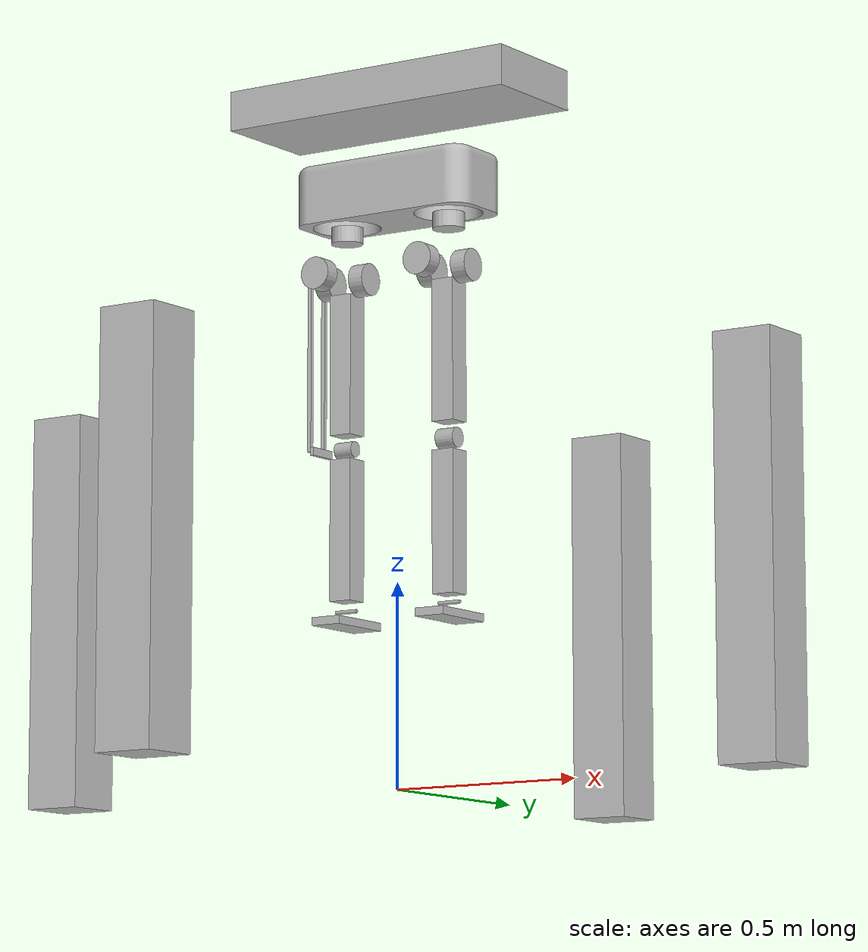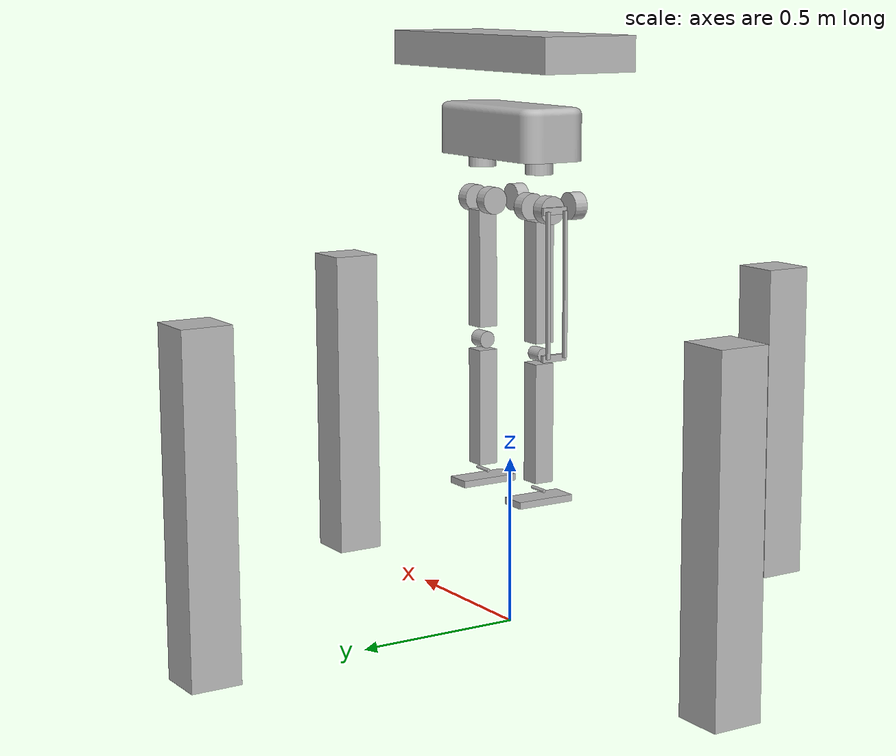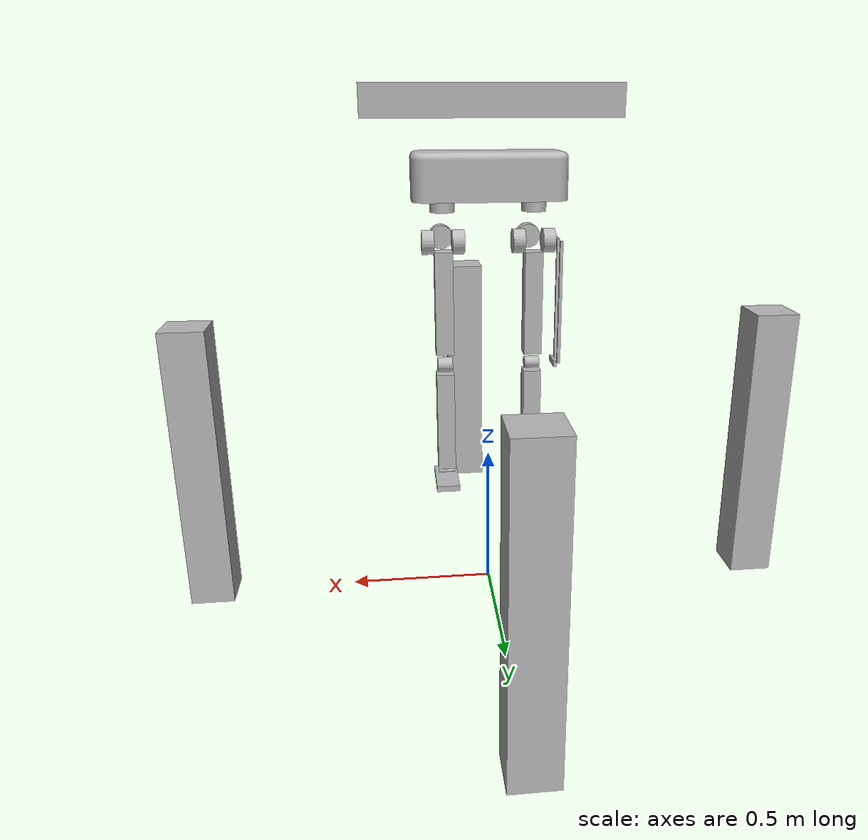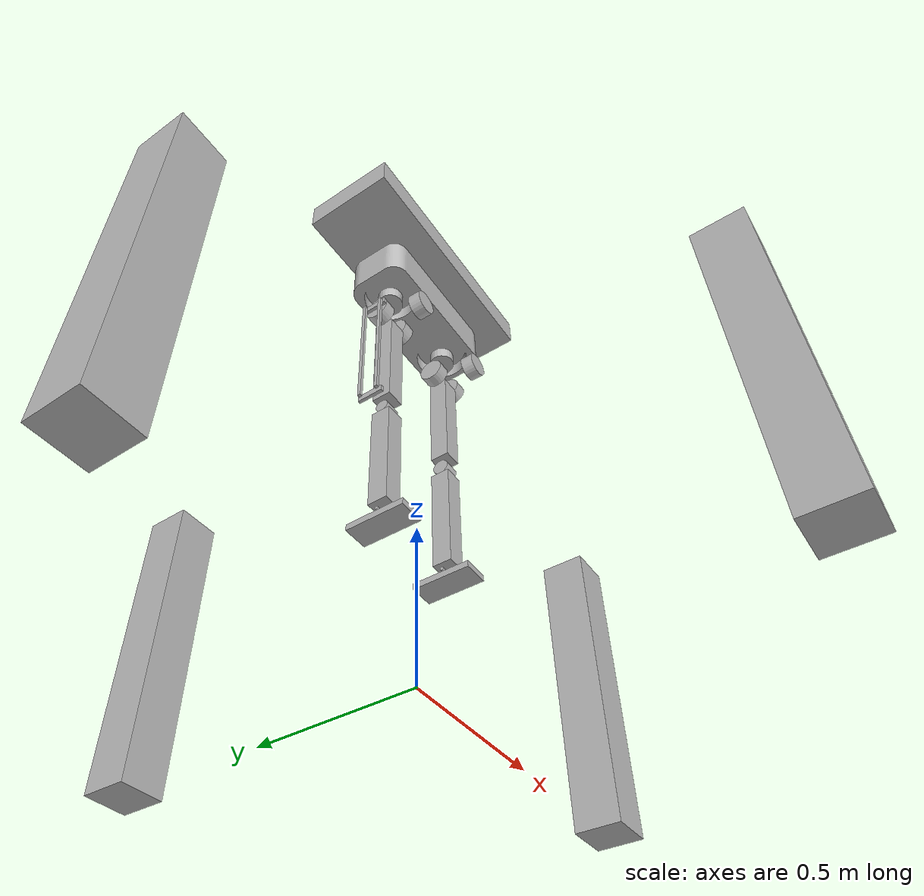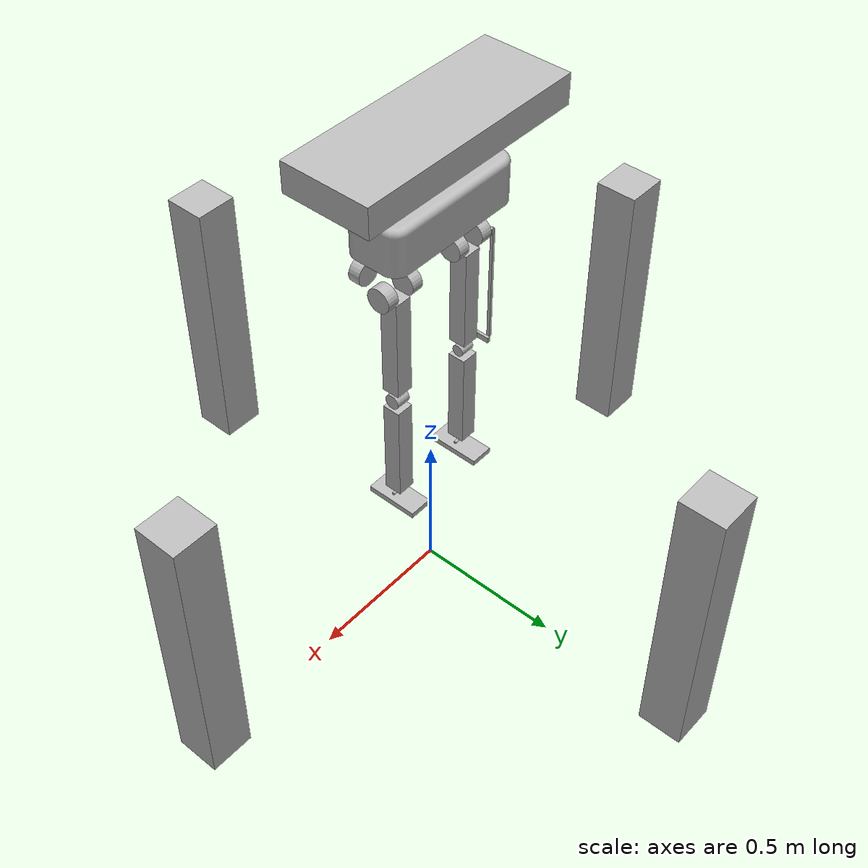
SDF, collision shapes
<?xml version="1.0" ?>
<sdf version="1.5">

<model name="simplified_biped">
    <link name="hanging_thing">
        <self_collide> 1 </self_collide>

        <pose> 0 0 1.7 0 0 0 </pose>

        <inertial>
            <mass>100</mass>

            <inertia>
                <ixx>0.3</ixx>
                <iyy>166</iyy>
                <izz>175</izz>
                <ixy>0</ixy>
                <ixz>0</ixz>
                <iyz>0</iyz>
            </inertia>
        </inertial>

        <collision name="torso_connection_collision">
            <geometry>
                <box>
                    <size> 0.80 0.3 0.1 </size>
                </box>
            </geometry>
        </collision>

        <visual name="torso_connection_visual">
            <geometry>
                <box>
                    <size> 0.80 0.3 0.1 </size>
                </box>
            </geometry>
        </visual>
    </link>

    <link name="rod_1">
        <self_collide> 1 </self_collide>

        <pose> 1 0 0.5 1.57 0 0 </pose>

        <inertial>
            <mass>100</mass>

            <inertia>
                <ixx>0.3</ixx>
                <iyy>166</iyy>
                <izz>175</izz>
                <ixy>0</ixy>
                <ixz>0</ixz>
                <iyz>0</iyz>
            </inertia>
        </inertial>

        <collision name="rod_1_collision">
            <geometry>
                <box>
                    <size> 0.15 1 0.15 </size>
                </box>
            </geometry>
        </collision>

        <visual name="rod_1_visual">
            <geometry>
                <box>
                    <size> 0.15 1 0.15 </size>
                </box>
            </geometry>
        </visual>
    </link>

    <link name="rod_2">
        <self_collide> 1 </self_collide>

        <pose> -1 0 0.5 1.57 0 0 </pose>

        <inertial>
            <mass>100</mass>

            <inertia>
                <ixx>0.3</ixx>
                <iyy>166</iyy>
                <izz>175</izz>
                <ixy>0</ixy>
                <ixz>0</ixz>
                <iyz>0</iyz>
            </inertia>
        </inertial>

        <collision name="rod_2_collision">
            <geometry>
                <box>
                    <size> 0.15 1 0.15 </size>
                </box>
            </geometry>
        </collision>

        <visual name="rod_2_visual">
            <geometry>
                <box>
                    <size> 0.15 1 0.15 </size>
                </box>
            </geometry>
        </visual>
    </link>

    <link name="rod_3">
        <self_collide> 1 </self_collide>

        <pose> 0 1 0.5 1.57 0 0 </pose>

        <inertial>
            <mass>100</mass>

            <inertia>
                <ixx>0.3</ixx>
                <iyy>166</iyy>
                <izz>175</izz>
                <ixy>0</ixy>
                <ixz>0</ixz>
                <iyz>0</iyz>
            </inertia>
        </inertial>

        <collision name="rod_3_collision">
            <geometry>
                <box>
                    <size> 0.15 1 0.15 </size>
                </box>
            </geometry>
        </collision>

        <visual name="rod_3_visual">
            <geometry>
                <box>
                    <size> 0.15 1 0.15 </size>
                </box>
            </geometry>
        </visual>
    </link>

    <link name="rod_4">
        <self_collide> 1 </self_collide>

        <pose> 0 -1 0.5 1.57 0 0 </pose>

        <inertial>
            <mass>100</mass>

            <inertia>
                <ixx>0.3</ixx>
                <iyy>166</iyy>
                <izz>175</izz>
                <ixy>0</ixy>
                <ixz>0</ixz>
                <iyz>0</iyz>
            </inertia>
        </inertial>

        <collision name="rod_4_collision">
            <geometry>
                <box>
                    <size> 0.15 1 0.15 </size>
                </box>
            </geometry>
        </collision>

        <visual name="rod_4_visual">
            <geometry>
                <box>
                    <size> 0.15 1 0.15 </size>
                </box>
            </geometry>
        </visual>
    </link>

    <joint name="temp_joint_1" type="fixed">
        <parent>hanging_thing</parent>
        <child>torso_connection</child>
    </joint>

    <joint name="temp_joint_2" type="fixed">
        <parent>rod_1</parent>
        <child>hanging_thing</child>
    </joint>

    <joint name="temp_joint_3" type="fixed">
        <parent>rod_2</parent>
        <child>hanging_thing</child>
    </joint>

    <joint name="temp_joint_4" type="fixed">
        <parent>rod_3</parent>
        <child>hanging_thing</child>
    </joint>

    <joint name="temp_joint_5" type="fixed">
        <parent>rod_4</parent>
        <child>hanging_thing</child>
    </joint>

    <link name="torso_connection">
        <self_collide> 1 </self_collide>

        <pose> 0 0 1.48 0 0 0 </pose>

        <inertial>
            <mass>10</mass>

            <inertia>
                <ixx>0.05121</ixx>
                <iyy>0.2096</iyy>
                <izz>0.2281</izz>
            </inertia>
        </inertial>

        <collision name="torso_connection_collision">
            <geometry>
                <mesh>
	   		 		<uri>model://simplified_biped/meshes/torso_connection.stl</uri>
				</mesh>
            </geometry>
        </collision>

        <visual name="torso_connection_visual">
            <geometry>
                <mesh>
					<uri>model://simplified_biped/meshes/torso_connection.stl</uri>
				</mesh>
            </geometry>
        </visual>
    </link>

    <!--Left leg-->
    <link name="left_lower_leg">

        <self_collide>1</self_collide>

        <pose> -0.15 0 0.64 0 0 0 </pose>

            <inertial>
                <mass>0.83</mass>
            <inertia>
                <ixx>0.015</ixx>
                <iyy>0.014</iyy>
                <izz>0.001</izz>
                <ixy>0</ixy>
                <ixz>0</ixz>
                <iyz>0</iyz>
                </inertia>
            </inertial>

            <collision name="left_lower_leg_collision">
                <geometry>
                    <box>
                        <size>0.06 0.06 0.35</size>
                    </box>
                </geometry>
            </collision>

            <visual name="left_lower_leg_visual">
                <geometry>
                    <box>
                        <size>0.06 0.06 0.4</size>
                    </box>
                </geometry>
            </visual>
    </link>

    <link name="left_knee">

        <self_collide>1</self_collide>
        <pose> -0.15 0 0.84 0 1.570796 0</pose>

        <inertial>
            <mass>0.1</mass>
            <inertia>
                <ixx>3.794e-05</ixx>
                <iyy>3.252e-05</iyy>
                <izz>3.794e-05</izz>
                <ixy>0</ixy>
                <ixz>0</ixz>
                <iyz>0</iyz>
            </inertia>
        </inertial>

        <collision name="left_knee_collision">
            <geometry>
                <cylinder>
                    <radius>0.02</radius>
                    <length>0.05</length>
                </cylinder>
            </geometry>
        </collision>

        <visual name="left_knee_visual">
            <pose> 0 0 0 0 0 0</pose>
            <geometry>
                <cylinder>
                    <radius>0.02</radius>
                    <length>0.05</length>
                </cylinder>
            </geometry>
        </visual>
    </link>

    <link name="left_upper_leg">

        <self_collide>1</self_collide>

        <pose> -0.15 0 1.05 0 0 0 </pose>

        <inertial>
            <mass>2.1</mass>
            <inertia>
                <ixx>0.052</ixx>
                <iyy>0.05</iyy>
                <izz>0.007</izz>
                <ixy>0</ixy>
                <ixz>0</ixz>
                <iyz>0</iyz>
            </inertia>
        </inertial>

        <collision name="left_upper_leg_collision">
            <geometry>
                    <box>
                        <size>0.06 0.06 0.35</size>
                    </box>
                </geometry>
        </collision>

        <visual name="left_upper_leg_visual">
            <geometry>
                <mesh>
					<uri>model://simplified_biped/meshes/upper_leg_350mm.stl</uri>
				</mesh>
            </geometry>
        </visual>
    </link>

    <link name="left_foot_base">

        <self_collide>1</self_collide>
        <pose> -0.15 0 0.41 0 0 0</pose>

        <inertial>
            <mass>0.1</mass>
            <inertia>
                <ixx>2.733e-04</ixx>
                <iyy>5.666e-05</iyy>
                <izz>3.233e-04</izz>
                <ixy>0</ixy>
                <ixz>0</ixz>
                <iyz>0</iyz>
            </inertia>
        </inertial>

        <collision name="left_foot_base_collision">
            <geometry>
                <box>
                    <size> 0.08 0.18 0.02</size>
                </box>
            </geometry>
        </collision>

        <visual name="left_foot_base_visual">
            <geometry>
                <box>
                    <size> 0.08 0.18 0.02</size>
                </box>
            </geometry>
        </visual>
    </link>

    <link name="left_ankle">

        <self_collide>1</self_collide>
        <pose> -0.15 0 0.44 0 1.570796 0 </pose>

        <inertial>
            <mass>0.01</mass>
            <inertia>
                <ixx>3.05e-05</ixx>
                <iyy>3.05e-05</iyy>
                <izz>3.088e-06</izz>
                <ixy>0</ixy>
                <ixz>0</ixz>
                <iyz>0</iyz>
            </inertia>
        </inertial>

        <collision name="left_ankle_collision">
            <geometry>
                <cylinder>
                    <radius>0.005</radius>
                    <length>0.06</length>
                </cylinder>
            </geometry>
        </collision>

        <visual name="left_ankle_visual">
            <geometry>
                <cylinder>
                    <radius>0.005</radius>
                    <length>0.06</length>
                </cylinder>
            </geometry>
        </visual>
    </link>

    <link name="left_hip_axis_1">

        <self_collide>1</self_collide>
        <pose> -0.1 0 1.26 0 1.570796 0 </pose>

        <inertial>
            <mass>4</mass>
            <inertia>
                <ixx>0.007</ixx>
                <iyy>0.007</iyy>
                <izz>0.012</izz>
            </inertia>
        </inertial>

        <collision name="left_hip_axis_1_collision">
            <geometry>
                <cylinder>
                    <radius>0.04</radius>
                    <length>0.04</length>
                </cylinder>
            </geometry>
        </collision>

        <visual name="left_hip_axis_1_visual">
            <pose> 0 0 0 0 0 0</pose>
            <geometry>
                <mesh>
					<uri>model://simplified_biped/meshes/actuator_scaled.stl</uri>
				</mesh>
            </geometry>
        </visual>
    </link>

	<link name="left_knee_actuator">

        <self_collide>1</self_collide>
        <pose> -0.2 0 1.26 0 -1.570796 0 </pose>

        <inertial>
            <mass>4</mass>
            <inertia>
                <ixx>0.007</ixx>
                <iyy>0.007</iyy>
                <izz>0.012</izz>
            </inertia>
        </inertial>

        <collision name="left_knee_actuator_collision">
            <geometry>
                <cylinder>
                    <radius>0.04</radius>
                    <length>0.04</length>
                </cylinder>
            </geometry>
        </collision>

        <visual name="left_knee_actuator_visual">
            <pose> 0 0 0 0 0 0</pose>
            <geometry>
                <mesh>
					<uri>model://simplified_biped/meshes/actuator_scaled.stl</uri>
				</mesh>
            </geometry>
        </visual>
    </link>

    <link name="left_hip_axis_2">

        <self_collide>1</self_collide>
        <pose> -0.15 -0.12 1.26 1.570796327 0 0 </pose>

        <inertial>
            <mass>4</mass>
            <inertia>
                <ixx>0.007</ixx>
                <iyy>0.007</iyy>
                <izz>0.012</izz>
            </inertia>
        </inertial>

        <collision name="left_hip_axis_2_collision">
            <geometry>
                <cylinder>
                    <radius>0.04</radius>
                    <length>0.04</length>
                </cylinder>
            </geometry>
        </collision>

        <visual name="left_hip_axis_2_visual">
            <pose> 0 0 0 0 0 0</pose>
            <geometry>
                <mesh>
					<uri>model://simplified_biped/meshes/actuator_scaled.stl</uri>
				</mesh>
            </geometry>
        </visual>
    </link>

    <link name="left_hip_axis_3">

        <self_collide>1</self_collide>
        <pose> -0.15 0 1.377 0 0 0 </pose> <!--145mm from center of hip axis 2-->

        <inertial>
            <mass>4</mass>
            <inertia>
                <ixx>0.007</ixx>
                <iyy>0.007</iyy>
                <izz>0.012</izz>
            </inertia>
        </inertial>

        <collision name="left_hip_axis_3_collision">
            <geometry>
                <cylinder>
                    <radius>0.04</radius>
                    <length>0.04</length>
                </cylinder>
            </geometry>
        </collision>

        <visual name="left_hip_axis_3_visual">
            <geometry>
                <mesh>
					<uri>model://simplified_biped/meshes/actuator_scaled.stl</uri>
				</mesh>
            </geometry>
        </visual>
    </link>

    <link name="left_actuator_linkage_mount">

        <self_collide>1</self_collide>
        <pose> -0.227 0 1.26 0 0 0</pose>

        <inertial>
            <mass>0.01</mass>
            <inertia>
                <ixx>2.733e-05</ixx>
                <iyy>5.666e-06</iyy>
                <izz>3.233e-05</izz>
                <ixy>0</ixy>
                <ixz>0</ixz>
                <iyz>0</iyz>
            </inertia>
        </inertial>

        <collision name="left_actuator_linkage_mount_collision">
            <geometry>
                <box>
                    <size> 0.01 0.08 0.02</size>
                </box>
            </geometry>
        </collision>

        <visual name="left_actuator_linkage_mount_visual">
            <geometry>
                <box>
                    <size> 0.01 0.08 0.02</size>
                </box>
            </geometry>
        </visual>
    </link>

    <link name="left_knee_linkage_mount">

        <self_collide>1</self_collide>
        <pose> -0.227 0 0.84 0 0 0</pose>

        <inertial>
            <mass>0.01</mass>
            <inertia>
                <ixx>2.733e-05</ixx>
                <iyy>5.666e-06</iyy>
                <izz>3.233e-05</izz>
                <ixy>0</ixy>
                <ixz>0</ixz>
                <iyz>0</iyz>
            </inertia>
        </inertial>

        <collision name="left_knee_linkage_mount_collision">
            <geometry>
                <box>
                    <size> 0.01 0.08 0.02</size>
                </box>
            </geometry>
        </collision>

        <visual name="left_knee_linkage_mount_visual">
            <geometry>
                <box>
                    <size> 0.01 0.08 0.02</size>
                </box>
            </geometry>
        </visual>
    </link>

    <link name="left_actuator_linkage_bar_1">

        <self_collide>1</self_collide>
        <pose> -0.24 0.029 1.05 0 0 0</pose>

        <inertial>
            <mass>0.01</mass>
            <inertia>
                <ixx>2.733e-05</ixx>
                <iyy>5.666e-06</iyy>
                <izz>3.233e-05</izz>
                <ixy>0</ixy>
                <ixz>0</ixz>
                <iyz>0</iyz>
            </inertia>
        </inertial>

        <collision name="left_actuator_linkage_bar_1_collision">
            <geometry>
                <box>
                    <size> 0.01 0.01 0.42</size>
                </box>
            </geometry>
        </collision>

        <visual name="left_actuator_linkage_bar_1_visual">
            <geometry>
                <box>
                    <size> 0.01 0.01 0.42</size>
                </box>
            </geometry>
        </visual>
    </link>

     <link name="left_actuator_linkage_bar_2">

        <self_collide>1</self_collide>
        <pose> -0.24 -0.029 1.05 0 0 0</pose>

        <inertial>
            <mass>0.01</mass>
            <inertia>
                <ixx>2.733e-05</ixx>
                <iyy>5.666e-06</iyy>
                <izz>3.233e-05</izz>
                <ixy>0</ixy>
                <ixz>0</ixz>
                <iyz>0</iyz>
            </inertia>
        </inertial>

        <collision name="left_actuator_linkage_bar_2_collision">
            <geometry>
                <box>
                    <size> 0.01 0.01 0.42</size>
                </box>
            </geometry>
        </collision>

        <visual name="left_actuator_linkage_bar_2_visual">
            <geometry>
                <box>
                    <size> 0.01 0.01 0.42</size>
                </box>
            </geometry>
        </visual>
    </link>

    <joint type="revolute" name="left_actuator_linkage_mount_bar_1_joint">

        <pose> 0 0.029 0 0 0 0 </pose>

        <parent>left_actuator_linkage_bar_1</parent>

        <child>left_actuator_linkage_mount</child>

        <axis>
            <xyz>1 0 0 </xyz>
        </axis>
    </joint>

    <joint type="revolute" name="left_actuator_linkage_mount_bar_2_joint">

        <pose> 0 -0.029 0 0 0 0 </pose>

        <parent>left_actuator_linkage_bar_2</parent>

        <child>left_actuator_linkage_mount</child>

        <axis>
            <xyz>1 0 0 </xyz>
        </axis>
    </joint>

    <joint type="revolute" name="left_knee_linkage_mount_bar_1_joint">

        <pose> 0 0.029 0 0 0 0 </pose>

        <parent>left_actuator_linkage_bar_1</parent>

        <child>left_knee_linkage_mount</child>

        <axis>
            <xyz>1 0 0 </xyz>
        </axis>
    </joint>

    <joint type="revolute" name="left_knee_linkage_mount_bar_2_joint">

        <pose> 0 -0.029 0 0 0 0 </pose>

        <parent>left_actuator_linkage_bar_2</parent>

        <child>left_knee_linkage_mount</child>

        <axis>
            <xyz>1 0 0 </xyz>
        </axis>
    </joint>

    <!-- The name is wrong here but used to not break the plugin code. It actually connects the linkage to the actuator. -->
    <joint type="revolute" name="left_knee_lower_leg_joint">

        <pose> 0 0 0 0 0 0 </pose>

        <parent>left_knee_actuator</parent>

        <child>left_actuator_linkage_mount</child>

        <axis>
            <xyz>1 0 0 </xyz>
            <limit>
                <lower>-3</lower>
                <upper>3</upper>
            </limit>
        </axis>
    </joint>

    <joint type="revolute" name="left_knee_lower_leg_joint_proper">

        <pose> 0 0 0.2 0 0 0 </pose>

        <parent>left_knee</parent>

        <child>left_lower_leg</child>

        <axis>
            <xyz>1 0 0 </xyz>
        </axis>
    </joint>

    <joint type="fixed" name="left_lower_leg_linkage_mount">

        <pose> 0 0 0 0 0 0 </pose>

        <parent>left_knee_linkage_mount</parent>

        <child>left_lower_leg</child>
    </joint>

    <joint type="revolute" name="left_hip_axis_1_upper_leg_joint">

        <pose> 0 0 0.205 0 0 0 </pose>

        <parent>left_hip_axis_1</parent>

        <child>left_upper_leg</child>

        <axis>
            <xyz>1 0 0 </xyz>
            <limit>
                <lower>-0.7</lower>
                <upper>2.5</upper>
            </limit>
        </axis>
    </joint>

	<joint type="fixed" name="left_hip_axis_1_knee_actuator_joint">
        <pose> -0.145 0 0 0 -1.570796 0 </pose>

        <parent>left_hip_axis_1</parent>
        <child>left_knee_actuator</child>
    </joint>

	<joint type="revolute" name="left_hip_axis_2_hip_axis_1_joint">
        <pose> 0 -0.12 -0.05 0 0 0 </pose>

        <parent>left_hip_axis_2</parent>
        <child>left_hip_axis_1</child>

        <axis>
            <xyz> 0 1 0 </xyz>
            <limit>
                <lower>-2.5</lower>
                <upper>2.5</upper>
            </limit>
        </axis>
    </joint>

    <joint type="revolute" name="left_hip_axis_3_hip_axis_2_joint">
        <pose> 0 0.12 -0.117 0 0 0 </pose>

        <parent>left_hip_axis_3</parent>
        <child>left_hip_axis_2</child>

        <axis>
            <xyz> 0 1 0 </xyz>
            <limit>
                <lower>-1</lower>
                <upper>1</upper>
            </limit>
        </axis>
    </joint>

    <joint type="fixed" name="left_ankle_foot_base_joint">
        <pose> 0 0 0.03 0 0 0 </pose>

        <parent>left_ankle</parent>
        <child>left_foot_base</child>

    </joint>

    <joint type="fixed" name="left_knee_upper_leg_joint">
        <pose>0 0 0 0 0 0 </pose>
        <parent>left_upper_leg</parent>
        <child>left_knee</child>
    </joint>

    <joint type="fixed" name="left_ankle_lower_leg_joint">
        <pose> 0 0 0 0 0 0 </pose>
        <parent>left_lower_leg</parent>
        <child>left_ankle</child>
    </joint>

	<joint type="fixed" name="left_torso_connection_joint">
        <pose> 0 0 0 0 0 0 </pose>
        <parent>torso_connection</parent>
        <child>left_hip_axis_3</child>
    </joint>

    <!-- Right leg -->
    <link name="right_lower_leg">

        <self_collide>1</self_collide>

        <pose> 0.15 0 0.635 0 0 0 </pose>

            <inertial>
                <mass>0.5</mass>
                <inertia>
                    <ixx>5.220e-03</ixx>
		            <iyy>5.220e-03</iyy>
		            <izz>2.078e-04</izz>
                    <ixy>0</ixy>
                    <ixz>0</ixz>
                    <iyz>0</iyz>
                </inertia>
            </inertial>

            <collision name="right_lower_leg_collision">
                <geometry>
                    <box>
                        <size>0.06 0.06 0.35</size>
                    </box>
                </geometry>
            </collision>

            <visual name="right_lower_leg_visual">
                <geometry>
                    <mesh>
		   		 		<uri>model://simplified_biped/meshes/lower_leg_350mm.stl</uri>
					</mesh>
                </geometry>
            </visual>
    </link>

    <link name="right_knee">

        <self_collide>1</self_collide>
        <pose> 0.15 0 0.84 0 1.570796 0</pose>

        <inertial>
            <mass>0.1</mass>
            <inertia>
                <ixx>3.794e-05</ixx>
                <iyy>3.252e-05</iyy>
                <izz>3.794e-05</izz>
                <ixy>0</ixy>
                <ixz>0</ixz>
                <iyz>0</iyz>
            </inertia>
        </inertial>

        <collision name="right_knee_collision">
            <geometry>
                <cylinder>
                    <radius>0.025</radius>
                    <length>0.05</length>
                </cylinder>
            </geometry>
        </collision>

        <visual name="right_knee_visual">
            <pose> 0 0 0 0 0 0</pose>
            <geometry>
                <cylinder>
                    <radius>0.025</radius>
                    <length>0.05</length>
                </cylinder>
            </geometry>
        </visual>
    </link>

    <link name="right_upper_leg">

        <self_collide>1</self_collide>

        <pose> 0.15 0 1.055 0 0 0 </pose>

        <inertial>
            <mass>0.5</mass>
            <inertia>
                <ixx>5.220e-03</ixx>
                <iyy>5.220e-03</iyy>
                <izz>2.078e-04</izz>
                <ixy>0</ixy>
                <ixz>0</ixz>
                <iyz>0</iyz>
            </inertia>
        </inertial>

        <!-- To make them perfectly stacked: 0.65m height-->

        <collision name="right_upper_leg_collision">
            <geometry>
                    <box>
                        <size>0.06 0.06 0.35</size>
                    </box>
                </geometry>
        </collision>

        <visual name="right_upper_leg_visual">
            <geometry>
                <mesh>
					<uri>model://simplified_biped/meshes/upper_leg_350mm.stl</uri>
				</mesh>
            </geometry>
        </visual>
    </link>

    <link name="right_foot_base">

        <self_collide>1</self_collide>
        <pose> 0.15 0 0.41 0 0 0</pose>

        <inertial>
            <mass>0.1</mass>
            <inertia>
                <ixx>2.733e-04</ixx>
                <iyy>5.666e-05</iyy>
                <izz>3.233e-04</izz>
                <ixy>0</ixy>
                <ixz>0</ixz>
                <iyz>0</iyz>
            </inertia>
        </inertial>

        <collision name="right_foot_base_collision">
            <geometry>
                <box>
                    <size> 0.08 0.18 0.02</size>
                </box>
            </geometry>
        </collision>

        <visual name="right_foot_base_visual">
            <geometry>
                <box>
                    <size> 0.08 0.18 0.02</size>
                </box>
            </geometry>
        </visual>
    </link>

    <link name="right_ankle">

        <self_collide>1</self_collide>
        <pose> 0.15 0 0.44 0 1.570796 0 </pose>

        <inertial>
            <mass>0.01</mass>
            <inertia>
                <ixx>3.05e-05</ixx>
                <iyy>3.05e-05</iyy>
                <izz>3.088e-06</izz>
                <ixy>0</ixy>
                <ixz>0</ixz>
                <iyz>0</iyz>
            </inertia>
        </inertial>

        <collision name="right_ankle_collision">
            <geometry>
                <cylinder>
                    <radius>0.005</radius>
                    <length>0.06</length>
                </cylinder>
            </geometry>
        </collision>

        <visual name="right_ankle_visual">
            <geometry>
                <cylinder>
                    <radius>0.005</radius>
                    <length>0.06</length>
                </cylinder>
            </geometry>
        </visual>
    </link>

    <link name="right_hip_axis_1">

        <self_collide>1</self_collide>
        <pose> 0.2 0 1.26 0 1.570796 0 </pose>

        <inertial>
            <mass>2.5</mass>
            <inertia>
                <ixx>0.004505</ixx>
                <iyy>0.004505</iyy>
                <izz>0.008515</izz>
            </inertia>
        </inertial>

        <collision name="right_hip_axis_1_collision">
            <geometry>
                <cylinder>
                    <radius>0.04</radius>
                    <length>0.04</length>
                </cylinder>
            </geometry>
        </collision>

        <visual name="right_hip_axis_1_visual">
            <pose> 0 0 0 0 0 0</pose>
            <geometry>
                <mesh>
					<uri>model://simplified_biped/meshes/actuator_scaled.stl</uri>
				</mesh>
            </geometry>
        </visual>
    </link>

	<link name="right_knee_actuator">

        <self_collide>1</self_collide>
        <pose> 0.1 0 1.26 0 -1.570796 0 </pose>

        <inertial>
            <mass>2.5</mass>
            <inertia>
                <ixx>0.004505</ixx>
                <iyy>0.004505</iyy>
                <izz>0.008515</izz>
            </inertia>
        </inertial>

        <collision name="right_knee_actuator_collision">
            <geometry>
                <cylinder>
                    <radius>0.04</radius>
                    <length>0.04</length>
                </cylinder>
            </geometry>
        </collision>

        <visual name="right_knee_actuator_visual">
            <pose> 0 0 0 0 0 0</pose>
            <geometry>
                <mesh>
					<uri>model://simplified_biped/meshes/actuator_scaled.stl</uri>
				</mesh>
            </geometry>
        </visual>
    </link>

    <link name="right_hip_axis_2">

        <self_collide>1</self_collide>
        <pose> 0.15 -0.12 1.26 1.570796327 0 0 </pose>

        <inertial>
            <mass>2.5</mass>
            <inertia>
                <ixx>0.004505</ixx>
                <iyy>0.004505</iyy>
                <izz>0.008515</izz>
            </inertia>
        </inertial>

        <collision name="right_hip_axis_2_collision">
            <geometry>
                <cylinder>
                    <radius>0.04</radius>
                    <length>0.04</length>
                </cylinder>
            </geometry>
        </collision>

        <visual name="right_hip_axis_2_visual">
            <pose> 0 0 0 0 0 0</pose>
            <geometry>
                <mesh>
					<uri>model://simplified_biped/meshes/actuator_scaled.stl</uri>
				</mesh>
            </geometry>
        </visual>
    </link>

    <link name="right_hip_axis_3">

        <self_collide>1</self_collide>
        <pose> 0.15 0 1.377 0 0 0 </pose> <!--145mm from center of hip axis 2-->

        <inertial>
            <mass>2.5</mass>
            <inertia>
                <ixx>0.004505</ixx>
                <iyy>0.004505</iyy>
                <izz>0.008515</izz>
                <ixy>0</ixy>
                <ixz>0</ixz>
                <iyz>0</iyz>
            </inertia>
        </inertial>

        <collision name="right_hip_axis_3_collision">
            <geometry>
                <cylinder>
                    <radius>0.04</radius>
                    <length>0.04</length>
                </cylinder>
            </geometry>
        </collision>

        <visual name="right_hip_axis_3_visual">
            <geometry>
                <mesh>
					<uri>model://simplified_biped/meshes/actuator_scaled.stl</uri>
				</mesh>
            </geometry>
        </visual>
    </link>

    <joint type="revolute" name="right_knee_lower_leg_joint">

        <pose> 0 0 0.205 0 0 0 </pose>

        <parent>right_knee</parent>

        <child>right_lower_leg</child>

        <axis>
            <xyz>1 0 0 </xyz>
            <limit>
                <lower>-2.5</lower>
                <upper>2.5</upper>
            </limit>
        </axis>
    </joint>

    <joint type="revolute" name="right_hip_axis_1_upper_leg_joint">

        <pose> 0 0 0.205 0 0 0 </pose>

        <parent>right_hip_axis_1</parent>

        <child>right_upper_leg</child>

        <axis>
            <xyz>1 0 0 </xyz>
            <limit>
                <lower>-0.7</lower>
                <upper>2.5</upper>
            </limit>
        </axis>
    </joint>

	<joint type="fixed" name="right_hip_axis_1_knee_actuator_joint">
        <pose> -0.145 0 0 0 -1.570796 0 </pose>

        <parent>right_hip_axis_1</parent>
        <child>right_knee_actuator</child>
    </joint>

	<joint type="revolute" name="right_hip_axis_2_hip_axis_1_joint">
        <pose> 0 -0.12 -0.05 0 0 0 </pose>

        <parent>right_hip_axis_2</parent>
        <child>right_hip_axis_1</child>

        <axis>
            <xyz> 0 1 0 </xyz>
            <limit>
                <lower>-2.5</lower>
                <upper>2.5</upper>
            </limit>
        </axis>
    </joint>

    <joint type="revolute" name="right_hip_axis_3_hip_axis_2_joint">
        <pose> 0 0.12 -0.117 0 0 0 </pose>

        <parent>right_hip_axis_3</parent>
        <child>right_hip_axis_2</child>

        <axis>
            <xyz> 0 1 0 </xyz>
            <limit>
                <lower>-1</lower>
                <upper>1</upper>
            </limit>
        </axis>
    </joint>

    <joint type="revolute" name="right_ankle_foot_base_joint">
        <pose> 0 0 0.03 0 0 0 </pose>

        <parent>right_ankle</parent>
        <child>right_foot_base</child>

        <axis>
            <xyz>1 0 0 </xyz>
            <limit>
                <lower>-1.57</lower>
                <upper>1.57</upper>
            </limit>
        </axis>
    </joint>

    <joint type="fixed" name="right_knee_upper_leg_joint">
        <pose>0 0 0 0 0 0 </pose>
        <parent>right_upper_leg</parent>
        <child>right_knee</child>
    </joint>

    <joint type="fixed" name="right_ankle_lower_leg_joint">
        <pose> 0 0 0 0 0 0 </pose>
        <parent>right_lower_leg</parent>
        <child>right_ankle</child>
    </joint>

	<joint type="fixed" name="right_torso_connection_joint">
        <pose> 0 0 0 0 0 0 </pose>
        <parent>torso_connection</parent>
        <child>right_hip_axis_3</child>
    </joint>
</model>
</sdf>
